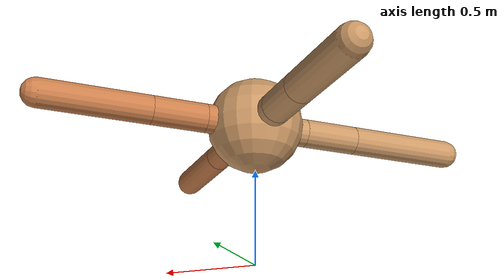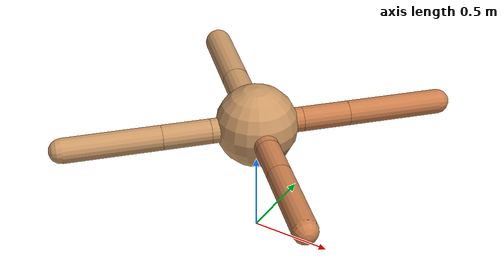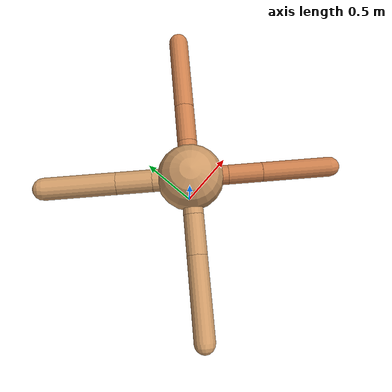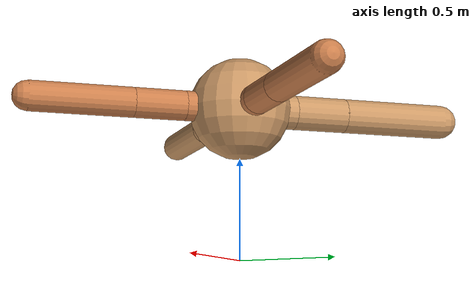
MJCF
<?xml version="1.0" ?>
<mujoco model="ant">

	<compiler angle="degree" coordinate="local" inertiafromgeom="true"/>

	<option integrator="RK4" timestep="0.01"/>

	<custom>

		<numeric data="0.0 0.0 0.55 1.0 0.0 0.0 0.0 0.0 1.0 0.0 -1.0 0.0 -1.0 0.0 1.0" name="init_qpos"/>

	</custom>

	<default>

		<joint armature="1" damping="1" limited="true"/>

		<geom conaffinity="0" condim="3" density="5.0" friction="1.5 0.1 0.1" margin="0.01" rgba="0.8 0.6 0.4 1"/>

	</default>

	<worldbody>

		<body name="torso" pos="0 0 0.75">

			<geom name="torso_geom" pos="0 0 0" size="0.2519276611846675" type="sphere"/>

			<!--joint armature="0" damping="0" limited="false" margin="0.01" name="root" pos="0 0 0" type="free"/-->

			<body name="front_left_leg" pos="0 0 0">

				<geom fromto="0 0 0 0.2 0.2 0" name="aux_1_geom" size="0.07589298437597494" type="capsule" rgba=".8 .5 .3 1"/>

				<body name="aux_1" pos="0.2 0.2 0">

					<joint axis="0 0 1" name="hip_1" pos="0.0 0.0 0.0" range="-40 40" type="hinge"/>

					<geom fromto="0 0 0 0.2049147118466924 0.2049147118466924 0" name="left_leg_geom" size="0.07589298437597494" type="capsule" rgba=".8 .5 .3 1"/>

					<body pos="0.2049147118466924 0.2049147118466924 0" name="front_left_foot">

						<joint axis="-1 1 0" name="ankle_1" pos="0.0 0.0 0.0" range="30 100" type="hinge"/>

						<geom fromto="0 0 0 0.4098294236933848 0.4098294236933848 0" name="left_ankle_geom" size="0.07589298437597494" type="capsule" rgba=".8 .5 .3 1"/>

					</body>

				</body>

			</body>

			<body name="front_right_leg" pos="0 0 0">

				<geom fromto="0 0 0 -0.2 0.2 0" name="aux_2_geom" size="0.0854246424722089" type="capsule"/>

				<body name="aux_2" pos="-0.2 0.2 0">

					<joint axis="0 0 1" name="hip_2" pos="0.0 0.0 0.0" range="-40 40" type="hinge"/>

					<geom fromto="0 0 0 -0.1902042420900398 0.1902042420900398 0" name="right_leg_geom" size="0.0854246424722089" type="capsule"/>

					<body pos="-0.1902042420900398 0.1902042420900398 0" name="front_right_foot">

						<joint axis="1 1 0" name="ankle_2" pos="0.0 0.0 0.0" range="-100 -30" type="hinge"/>

						<geom fromto="0 0 0 -0.3804084841800796 0.3804084841800796 0" name="right_ankle_geom" size="0.0854246424722089" type="capsule"/>

					</body>

				</body>

			</body>

			<body name="left_back_leg" pos="0 0 0">

				<geom fromto="0 0 0 -0.2 -0.2 0" name="aux_3_geom" size="0.07582838570091452" type="capsule"/>

				<body name="aux_3" pos="-0.2 -0.2 0">

					<joint axis="0 0 1" name="hip_3" pos="0.0 0.0 0.0" range="-40 40" type="hinge"/>

					<geom fromto="0 0 0 -0.20783606500145374 -0.20783606500145374 0" name="back_leg_geom" size="0.07582838570091452" type="capsule"/>

					<body pos="-0.20783606500145374 -0.20783606500145374 0" name="left_back_foot">

						<joint axis="-1 1 0" name="ankle_3" pos="0.0 0.0 0.0" range="-100 -30" type="hinge"/>

						<geom fromto="0 0 0 -0.4156721300029075 -0.4156721300029075 0" name="third_ankle_geom" size="0.07582838570091452" type="capsule"/>

					</body>

				</body>

			</body>

			<body name="right_back_leg" pos="0 0 0">

				<geom fromto="0 0 0 0.2 -0.2 0" name="aux_4_geom" size="0.07397810105851636" type="capsule" rgba=".8 .5 .3 1"/>

				<body name="aux_4" pos="0.2 -0.2 0">

					<joint axis="0 0 1" name="hip_4" pos="0.0 0.0 0.0" range="-40 40" type="hinge"/>

					<geom fromto="0 0 0 0.18094667973981404 -0.18094667973981404 0" name="rightback_leg_geom" size="0.07397810105851636" type="capsule" rgba=".8 .5 .3 1"/>

					<body pos="0.18094667973981404 -0.18094667973981404 0" name="right_back_foot">

						<joint axis="1 1 0" name="ankle_4" pos="0.0 0.0 0.0" range="30 100" type="hinge"/>

						<geom fromto="0 0 0 0.3618933594796281 -0.3618933594796281 0" name="fourth_ankle_geom" size="0.07397810105851636" type="capsule" rgba=".8 .5 .3 1"/>

					</body>

				</body>

			</body>

		</body>

	</worldbody>

	<actuator>

		<motor ctrllimited="true" ctrlrange="-1.0 1.0" joint="hip_4" gear="150"/>

		<motor ctrllimited="true" ctrlrange="-1.0 1.0" joint="ankle_4" gear="150"/>

		<motor ctrllimited="true" ctrlrange="-1.0 1.0" joint="hip_1" gear="150"/>

		<motor ctrllimited="true" ctrlrange="-1.0 1.0" joint="ankle_1" gear="150"/>

		<motor ctrllimited="true" ctrlrange="-1.0 1.0" joint="hip_2" gear="150"/>

		<motor ctrllimited="true" ctrlrange="-1.0 1.0" joint="ankle_2" gear="150"/>

		<motor ctrllimited="true" ctrlrange="-1.0 1.0" joint="hip_3" gear="150"/>

		<motor ctrllimited="true" ctrlrange="-1.0 1.0" joint="ankle_3" gear="150"/>

	</actuator>

</mujoco>
